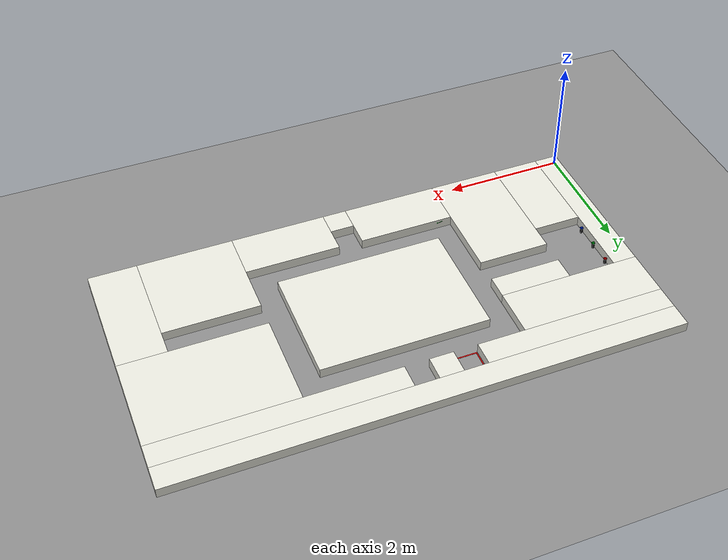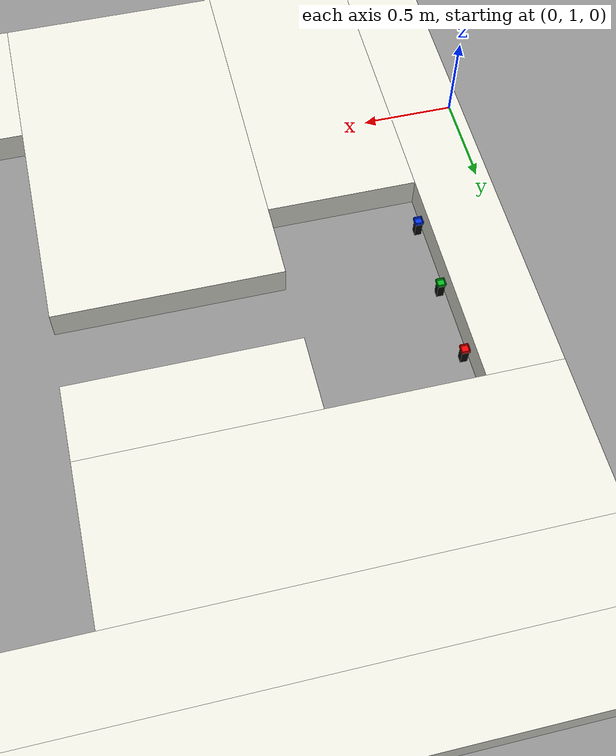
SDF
<sdf version="1.9">
 <world name="ros2_world">
  <model name="ground_plane">
   <static>true</static>
   <link name="link">
    <collision name="collision">
     <geometry><plane><normal>0 0 1</normal><size>30 30</size></plane></geometry>
    </collision>
    <visual name="visual">
     <geometry><plane><normal>0 0 1</normal><size>30 30</size></plane></geometry>
     <material><ambient>0.55 0.55 0.55 1</ambient><diffuse>0.55 0.55 0.55 1</diffuse></material>
    </visual>
   </link>
  </model>
  <model name="paredes">
   <static>true</static>
   <link name="bloque_0">
    <pose>4.2 4.2 0.085 0 0 0</pose>
    <collision name="colision"><geometry><box><size>8.4 0.4 0.17</size></box></geometry></collision>
    <visual name="visual">
     <geometry><box><size>8.4 0.4 0.17</size></box></geometry>
     <material><ambient>0.9 0.9 0.86 1</ambient><diffuse>0.9 0.9 0.86 1</diffuse></material>
    </visual>
   </link>
   <link name="bloque_1">
    <pose>1.6 3.8 0.085 0 0 0</pose>
    <collision name="colision"><geometry><box><size>3.2 0.4 0.17</size></box></geometry></collision>
    <visual name="visual">
     <geometry><box><size>3.2 0.4 0.17</size></box></geometry>
     <material><ambient>0.9 0.9 0.86 1</ambient><diffuse>0.9 0.9 0.86 1</diffuse></material>
    </visual>
   </link>
   <link name="bloque_2">
    <pose>3.8 3.8 0.085 0 0 0</pose>
    <collision name="colision"><geometry><box><size>0.4 0.4 0.17</size></box></geometry></collision>
    <visual name="visual">
     <geometry><box><size>0.4 0.4 0.17</size></box></geometry>
     <material><ambient>0.9 0.9 0.86 1</ambient><diffuse>0.9 0.9 0.86 1</diffuse></material>
    </visual>
   </link>
   <link name="bloque_3">
    <pose>6.4 3.8 0.085 0 0 0</pose>
    <collision name="colision"><geometry><box><size>4 0.4 0.17</size></box></geometry></collision>
    <visual name="visual">
     <geometry><box><size>4 0.4 0.17</size></box></geometry>
     <material><ambient>0.9 0.9 0.86 1</ambient><diffuse>0.9 0.9 0.86 1</diffuse></material>
    </visual>
   </link>
   <link name="bloque_4">
    <pose>1.2 3.2 0.085 0 0 0</pose>
    <collision name="colision"><geometry><box><size>2.4 0.8 0.17</size></box></geometry></collision>
    <visual name="visual">
     <geometry><box><size>2.4 0.8 0.17</size></box></geometry>
     <material><ambient>0.9 0.9 0.86 1</ambient><diffuse>0.9 0.9 0.86 1</diffuse></material>
    </visual>
   </link>
   <link name="bloque_5">
    <pose>7.2 2.8 0.085 0 0 0</pose>
    <collision name="colision"><geometry><box><size>2.4 1.6 0.17</size></box></geometry></collision>
    <visual name="visual">
     <geometry><box><size>2.4 1.6 0.17</size></box></geometry>
     <material><ambient>0.9 0.9 0.86 1</ambient><diffuse>0.9 0.9 0.86 1</diffuse></material>
    </visual>
   </link>
   <link name="bloque_6">
    <pose>4.2 2.2 0.085 0 0 0</pose>
    <collision name="colision"><geometry><box><size>2.8 2 0.17</size></box></geometry></collision>
    <visual name="visual">
     <geometry><box><size>2.8 2 0.17</size></box></geometry>
     <material><ambient>0.9 0.9 0.86 1</ambient><diffuse>0.9 0.9 0.86 1</diffuse></material>
    </visual>
   </link>
   <link name="bloque_7">
    <pose>0.2 1.4 0.085 0 0 0</pose>
    <collision name="colision"><geometry><box><size>0.4 2.8 0.17</size></box></geometry></collision>
    <visual name="visual">
     <geometry><box><size>0.4 2.8 0.17</size></box></geometry>
     <material><ambient>0.9 0.9 0.86 1</ambient><diffuse>0.9 0.9 0.86 1</diffuse></material>
    </visual>
   </link>
   <link name="bloque_8">
    <pose>1.8 2.6 0.085 0 0 0</pose>
    <collision name="colision"><geometry><box><size>1.2 0.4 0.17</size></box></geometry></collision>
    <visual name="visual">
     <geometry><box><size>1.2 0.4 0.17</size></box></geometry>
     <material><ambient>0.9 0.9 0.86 1</ambient><diffuse>0.9 0.9 0.86 1</diffuse></material>
    </visual>
   </link>
   <link name="bloque_9">
    <pose>1.8 1 0.085 0 0 0</pose>
    <collision name="colision"><geometry><box><size>1.2 2 0.17</size></box></geometry></collision>
    <visual name="visual">
     <geometry><box><size>1.2 2 0.17</size></box></geometry>
     <material><ambient>0.9 0.9 0.86 1</ambient><diffuse>0.9 0.9 0.86 1</diffuse></material>
    </visual>
   </link>
   <link name="bloque_10">
    <pose>8 1 0.085 0 0 0</pose>
    <collision name="colision"><geometry><box><size>0.8 2 0.17</size></box></geometry></collision>
    <visual name="visual">
     <geometry><box><size>0.8 2 0.17</size></box></geometry>
     <material><ambient>0.9 0.9 0.86 1</ambient><diffuse>0.9 0.9 0.86 1</diffuse></material>
    </visual>
   </link>
   <link name="bloque_11">
    <pose>0.8 0.8 0.085 0 0 0</pose>
    <collision name="colision"><geometry><box><size>0.8 1.6 0.17</size></box></geometry></collision>
    <visual name="visual">
     <geometry><box><size>0.8 1.6 0.17</size></box></geometry>
     <material><ambient>0.9 0.9 0.86 1</ambient><diffuse>0.9 0.9 0.86 1</diffuse></material>
    </visual>
   </link>
   <link name="bloque_12">
    <pose>6.8 0.8 0.085 0 0 0</pose>
    <collision name="colision"><geometry><box><size>1.6 1.6 0.17</size></box></geometry></collision>
    <visual name="visual">
     <geometry><box><size>1.6 1.6 0.17</size></box></geometry>
     <material><ambient>0.9 0.9 0.86 1</ambient><diffuse>0.9 0.9 0.86 1</diffuse></material>
    </visual>
   </link>
   <link name="bloque_13">
    <pose>3.2 0.4 0.085 0 0 0</pose>
    <collision name="colision"><geometry><box><size>1.6 0.8 0.17</size></box></geometry></collision>
    <visual name="visual">
     <geometry><box><size>1.6 0.8 0.17</size></box></geometry>
     <material><ambient>0.9 0.9 0.86 1</ambient><diffuse>0.9 0.9 0.86 1</diffuse></material>
    </visual>
   </link>
   <link name="bloque_14">
    <pose>5.2 0.4 0.085 0 0 0</pose>
    <collision name="colision"><geometry><box><size>1.6 0.8 0.17</size></box></geometry></collision>
    <visual name="visual">
     <geometry><box><size>1.6 0.8 0.17</size></box></geometry>
     <material><ambient>0.9 0.9 0.86 1</ambient><diffuse>0.9 0.9 0.86 1</diffuse></material>
    </visual>
   </link>
   <link name="bloque_15">
    <pose>4.2 0.2 0.085 0 0 0</pose>
    <collision name="colision"><geometry><box><size>0.4 0.4 0.17</size></box></geometry></collision>
    <visual name="visual">
     <geometry><box><size>0.4 0.4 0.17</size></box></geometry>
     <material><ambient>0.9 0.9 0.86 1</ambient><diffuse>0.9 0.9 0.86 1</diffuse></material>
    </visual>
   </link>
  </model>
  <model name="zonas_prohibidas">
   <static>true</static>
   <link name="zona_0">
    <visual name="norte">
     <pose>3.4 3.985 0.0005 0 0 0</pose>
     <geometry><box><size>0.39 0.02 0.001</size></box></geometry>
     <material><ambient>0.85 0 0 1</ambient><diffuse>0.85 0 0 1</diffuse></material>
    </visual>
    <visual name="sur">
     <pose>3.4 3.615 0.0005 0 0 0</pose>
     <geometry><box><size>0.39 0.02 0.001</size></box></geometry>
     <material><ambient>0.85 0 0 1</ambient><diffuse>0.85 0 0 1</diffuse></material>
    </visual>
    <visual name="este">
     <pose>3.585 3.8 0.0005 0 0 0</pose>
     <geometry><box><size>0.02 0.35 0.001</size></box></geometry>
     <material><ambient>0.85 0 0 1</ambient><diffuse>0.85 0 0 1</diffuse></material>
    </visual>
    <visual name="oeste">
     <pose>3.215 3.8 0.0005 0 0 0</pose>
     <geometry><box><size>0.02 0.35 0.001</size></box></geometry>
     <material><ambient>0.85 0 0 1</ambient><diffuse>0.85 0 0 1</diffuse></material>
    </visual>
   </link>
  </model>
  <model name="flechas">
   <static>true</static>
   <link name="flecha_0">
    <pose>2.52 3.59875 0.115 0 0 0</pose>
    <visual name="p0">
     <pose>-0.007 0 0 0 0 0</pose>
     <geometry><box><size>0.085 0.0015 0.01</size></box></geometry>
     <material><ambient>0 0.2 1 1</ambient><diffuse>0 0.2 1 1</diffuse></material>
    </visual>
    <visual name="p1">
     <pose>0.03578 0 0 0 0 0</pose>
     <geometry><box><size>0.00056 0.0015 0.029</size></box></geometry>
     <material><ambient>0 0.2 1 1</ambient><diffuse>0 0.2 1 1</diffuse></material>
    </visual>
    <visual name="p2">
     <pose>0.03634 0 0 0 0 0</pose>
     <geometry><box><size>0.00056 0.0015 0.02784</size></box></geometry>
     <material><ambient>0 0.2 1 1</ambient><diffuse>0 0.2 1 1</diffuse></material>
    </visual>
    <visual name="p3">
     <pose>0.0369 0 0 0 0 0</pose>
     <geometry><box><size>0.00056 0.0015 0.02668</size></box></geometry>
     <material><ambient>0 0.2 1 1</ambient><diffuse>0 0.2 1 1</diffuse></material>
    </visual>
    <visual name="p4">
     <pose>0.03746 0 0 0 0 0</pose>
     <geometry><box><size>0.00056 0.0015 0.02552</size></box></geometry>
     <material><ambient>0 0.2 1 1</ambient><diffuse>0 0.2 1 1</diffuse></material>
    </visual>
    <visual name="p5">
     <pose>0.03802 0 0 0 0 0</pose>
     <geometry><box><size>0.00056 0.0015 0.02436</size></box></geometry>
     <material><ambient>0 0.2 1 1</ambient><diffuse>0 0.2 1 1</diffuse></material>
    </visual>
    <visual name="p6">
     <pose>0.03858 0 0 0 0 0</pose>
     <geometry><box><size>0.00056 0.0015 0.0232</size></box></geometry>
     <material><ambient>0 0.2 1 1</ambient><diffuse>0 0.2 1 1</diffuse></material>
    </visual>
    <visual name="p7">
     <pose>0.03914 0 0 0 0 0</pose>
     <geometry><box><size>0.00056 0.0015 0.02204</size></box></geometry>
     <material><ambient>0 0.2 1 1</ambient><diffuse>0 0.2 1 1</diffuse></material>
    </visual>
    <visual name="p8">
     <pose>0.0397 0 0 0 0 0</pose>
     <geometry><box><size>0.00056 0.0015 0.02088</size></box></geometry>
     <material><ambient>0 0.2 1 1</ambient><diffuse>0 0.2 1 1</diffuse></material>
    </visual>
    <visual name="p9">
     <pose>0.04026 0 0 0 0 0</pose>
     <geometry><box><size>0.00056 0.0015 0.01972</size></box></geometry>
     <material><ambient>0 0.2 1 1</ambient><diffuse>0 0.2 1 1</diffuse></material>
    </visual>
    <visual name="p10">
     <pose>0.04082 0 0 0 0 0</pose>
     <geometry><box><size>0.00056 0.0015 0.01856</size></box></geometry>
     <material><ambient>0 0.2 1 1</ambient><diffuse>0 0.2 1 1</diffuse></material>
    </visual>
    <visual name="p11">
     <pose>0.04138 0 0 0 0 0</pose>
     <geometry><box><size>0.00056 0.0015 0.0174</size></box></geometry>
     <material><ambient>0 0.2 1 1</ambient><diffuse>0 0.2 1 1</diffuse></material>
    </visual>
    <visual name="p12">
     <pose>0.04194 0 0 0 0 0</pose>
     <geometry><box><size>0.00056 0.0015 0.01624</size></box></geometry>
     <material><ambient>0 0.2 1 1</ambient><diffuse>0 0.2 1 1</diffuse></material>
    </visual>
    <visual name="p13">
     <pose>0.0425 0 0 0 0 0</pose>
     <geometry><box><size>0.00056 0.0015 0.01508</size></box></geometry>
     <material><ambient>0 0.2 1 1</ambient><diffuse>0 0.2 1 1</diffuse></material>
    </visual>
    <visual name="p14">
     <pose>0.04306 0 0 0 0 0</pose>
     <geometry><box><size>0.00056 0.0015 0.01392</size></box></geometry>
     <material><ambient>0 0.2 1 1</ambient><diffuse>0 0.2 1 1</diffuse></material>
    </visual>
    <visual name="p15">
     <pose>0.04362 0 0 0 0 0</pose>
     <geometry><box><size>0.00056 0.0015 0.01276</size></box></geometry>
     <material><ambient>0 0.2 1 1</ambient><diffuse>0 0.2 1 1</diffuse></material>
    </visual>
    <visual name="p16">
     <pose>0.04418 0 0 0 0 0</pose>
     <geometry><box><size>0.00056 0.0015 0.0116</size></box></geometry>
     <material><ambient>0 0.2 1 1</ambient><diffuse>0 0.2 1 1</diffuse></material>
    </visual>
    <visual name="p17">
     <pose>0.04474 0 0 0 0 0</pose>
     <geometry><box><size>0.00056 0.0015 0.01044</size></box></geometry>
     <material><ambient>0 0.2 1 1</ambient><diffuse>0 0.2 1 1</diffuse></material>
    </visual>
    <visual name="p18">
     <pose>0.0453 0 0 0 0 0</pose>
     <geometry><box><size>0.00056 0.0015 0.00928</size></box></geometry>
     <material><ambient>0 0.2 1 1</ambient><diffuse>0 0.2 1 1</diffuse></material>
    </visual>
    <visual name="p19">
     <pose>0.04586 0 0 0 0 0</pose>
     <geometry><box><size>0.00056 0.0015 0.00812</size></box></geometry>
     <material><ambient>0 0.2 1 1</ambient><diffuse>0 0.2 1 1</diffuse></material>
    </visual>
    <visual name="p20">
     <pose>0.04642 0 0 0 0 0</pose>
     <geometry><box><size>0.00056 0.0015 0.00696</size></box></geometry>
     <material><ambient>0 0.2 1 1</ambient><diffuse>0 0.2 1 1</diffuse></material>
    </visual>
    <visual name="p21">
     <pose>0.04698 0 0 0 0 0</pose>
     <geometry><box><size>0.00056 0.0015 0.0058</size></box></geometry>
     <material><ambient>0 0.2 1 1</ambient><diffuse>0 0.2 1 1</diffuse></material>
    </visual>
    <visual name="p22">
     <pose>0.04754 0 0 0 0 0</pose>
     <geometry><box><size>0.00056 0.0015 0.00464</size></box></geometry>
     <material><ambient>0 0.2 1 1</ambient><diffuse>0 0.2 1 1</diffuse></material>
    </visual>
    <visual name="p23">
     <pose>0.0481 0 0 0 0 0</pose>
     <geometry><box><size>0.00056 0.0015 0.00348</size></box></geometry>
     <material><ambient>0 0.2 1 1</ambient><diffuse>0 0.2 1 1</diffuse></material>
    </visual>
    <visual name="p24">
     <pose>0.04866 0 0 0 0 0</pose>
     <geometry><box><size>0.00056 0.0015 0.00232</size></box></geometry>
     <material><ambient>0 0.2 1 1</ambient><diffuse>0 0.2 1 1</diffuse></material>
    </visual>
    <visual name="p25">
     <pose>0.04922 0 0 0 0 0</pose>
     <geometry><box><size>0.00056 0.0015 0.00116</size></box></geometry>
     <material><ambient>0 0.2 1 1</ambient><diffuse>0 0.2 1 1</diffuse></material>
    </visual>
   </link>
   <link name="flecha_4">
    <pose>1.32 2.39875 0.115 0 0 0</pose>
    <visual name="p0">
     <pose>-0.007 0 0 0 0 0</pose>
     <geometry><box><size>0.085 0.0015 0.01</size></box></geometry>
     <material><ambient>0 0.2 1 1</ambient><diffuse>0 0.2 1 1</diffuse></material>
    </visual>
    <visual name="p1">
     <pose>0.03578 0 0 0 0 0</pose>
     <geometry><box><size>0.00056 0.0015 0.029</size></box></geometry>
     <material><ambient>0 0.2 1 1</ambient><diffuse>0 0.2 1 1</diffuse></material>
    </visual>
    <visual name="p2">
     <pose>0.03634 0 0 0 0 0</pose>
     <geometry><box><size>0.00056 0.0015 0.02784</size></box></geometry>
     <material><ambient>0 0.2 1 1</ambient><diffuse>0 0.2 1 1</diffuse></material>
    </visual>
    <visual name="p3">
     <pose>0.0369 0 0 0 0 0</pose>
     <geometry><box><size>0.00056 0.0015 0.02668</size></box></geometry>
     <material><ambient>0 0.2 1 1</ambient><diffuse>0 0.2 1 1</diffuse></material>
    </visual>
    <visual name="p4">
     <pose>0.03746 0 0 0 0 0</pose>
     <geometry><box><size>0.00056 0.0015 0.02552</size></box></geometry>
     <material><ambient>0 0.2 1 1</ambient><diffuse>0 0.2 1 1</diffuse></material>
    </visual>
    <visual name="p5">
     <pose>0.03802 0 0 0 0 0</pose>
     <geometry><box><size>0.00056 0.0015 0.02436</size></box></geometry>
     <material><ambient>0 0.2 1 1</ambient><diffuse>0 0.2 1 1</diffuse></material>
    </visual>
    <visual name="p6">
     <pose>0.03858 0 0 0 0 0</pose>
     <geometry><box><size>0.00056 0.0015 0.0232</size></box></geometry>
     <material><ambient>0 0.2 1 1</ambient><diffuse>0 0.2 1 1</diffuse></material>
    </visual>
    <visual name="p7">
     <pose>0.03914 0 0 0 0 0</pose>
     <geometry><box><size>0.00056 0.0015 0.02204</size></box></geometry>
     <material><ambient>0 0.2 1 1</ambient><diffuse>0 0.2 1 1</diffuse></material>
    </visual>
    <visual name="p8">
     <pose>0.0397 0 0 0 0 0</pose>
     <geometry><box><size>0.00056 0.0015 0.02088</size></box></geometry>
     <material><ambient>0 0.2 1 1</ambient><diffuse>0 0.2 1 1</diffuse></material>
    </visual>
    <visual name="p9">
     <pose>0.04026 0 0 0 0 0</pose>
     <geometry><box><size>0.00056 0.0015 0.01972</size></box></geometry>
     <material><ambient>0 0.2 1 1</ambient><diffuse>0 0.2 1 1</diffuse></material>
    </visual>
    <visual name="p10">
     <pose>0.04082 0 0 0 0 0</pose>
     <geometry><box><size>0.00056 0.0015 0.01856</size></box></geometry>
     <material><ambient>0 0.2 1 1</ambient><diffuse>0 0.2 1 1</diffuse></material>
    </visual>
    <visual name="p11">
     <pose>0.04138 0 0 0 0 0</pose>
     <geometry><box><size>0.00056 0.0015 0.0174</size></box></geometry>
     <material><ambient>0 0.2 1 1</ambient><diffuse>0 0.2 1 1</diffuse></material>
    </visual>
    <visual name="p12">
     <pose>0.04194 0 0 0 0 0</pose>
     <geometry><box><size>0.00056 0.0015 0.01624</size></box></geometry>
     <material><ambient>0 0.2 1 1</ambient><diffuse>0 0.2 1 1</diffuse></material>
    </visual>
    <visual name="p13">
     <pose>0.0425 0 0 0 0 0</pose>
     <geometry><box><size>0.00056 0.0015 0.01508</size></box></geometry>
     <material><ambient>0 0.2 1 1</ambient><diffuse>0 0.2 1 1</diffuse></material>
    </visual>
    <visual name="p14">
     <pose>0.04306 0 0 0 0 0</pose>
     <geometry><box><size>0.00056 0.0015 0.01392</size></box></geometry>
     <material><ambient>0 0.2 1 1</ambient><diffuse>0 0.2 1 1</diffuse></material>
    </visual>
    <visual name="p15">
     <pose>0.04362 0 0 0 0 0</pose>
     <geometry><box><size>0.00056 0.0015 0.01276</size></box></geometry>
     <material><ambient>0 0.2 1 1</ambient><diffuse>0 0.2 1 1</diffuse></material>
    </visual>
    <visual name="p16">
     <pose>0.04418 0 0 0 0 0</pose>
     <geometry><box><size>0.00056 0.0015 0.0116</size></box></geometry>
     <material><ambient>0 0.2 1 1</ambient><diffuse>0 0.2 1 1</diffuse></material>
    </visual>
    <visual name="p17">
     <pose>0.04474 0 0 0 0 0</pose>
     <geometry><box><size>0.00056 0.0015 0.01044</size></box></geometry>
     <material><ambient>0 0.2 1 1</ambient><diffuse>0 0.2 1 1</diffuse></material>
    </visual>
    <visual name="p18">
     <pose>0.0453 0 0 0 0 0</pose>
     <geometry><box><size>0.00056 0.0015 0.00928</size></box></geometry>
     <material><ambient>0 0.2 1 1</ambient><diffuse>0 0.2 1 1</diffuse></material>
    </visual>
    <visual name="p19">
     <pose>0.04586 0 0 0 0 0</pose>
     <geometry><box><size>0.00056 0.0015 0.00812</size></box></geometry>
     <material><ambient>0 0.2 1 1</ambient><diffuse>0 0.2 1 1</diffuse></material>
    </visual>
    <visual name="p20">
     <pose>0.04642 0 0 0 0 0</pose>
     <geometry><box><size>0.00056 0.0015 0.00696</size></box></geometry>
     <material><ambient>0 0.2 1 1</ambient><diffuse>0 0.2 1 1</diffuse></material>
    </visual>
    <visual name="p21">
     <pose>0.04698 0 0 0 0 0</pose>
     <geometry><box><size>0.00056 0.0015 0.0058</size></box></geometry>
     <material><ambient>0 0.2 1 1</ambient><diffuse>0 0.2 1 1</diffuse></material>
    </visual>
    <visual name="p22">
     <pose>0.04754 0 0 0 0 0</pose>
     <geometry><box><size>0.00056 0.0015 0.00464</size></box></geometry>
     <material><ambient>0 0.2 1 1</ambient><diffuse>0 0.2 1 1</diffuse></material>
    </visual>
    <visual name="p23">
     <pose>0.0481 0 0 0 0 0</pose>
     <geometry><box><size>0.00056 0.0015 0.00348</size></box></geometry>
     <material><ambient>0 0.2 1 1</ambient><diffuse>0 0.2 1 1</diffuse></material>
    </visual>
    <visual name="p24">
     <pose>0.04866 0 0 0 0 0</pose>
     <geometry><box><size>0.00056 0.0015 0.00232</size></box></geometry>
     <material><ambient>0 0.2 1 1</ambient><diffuse>0 0.2 1 1</diffuse></material>
    </visual>
    <visual name="p25">
     <pose>0.04922 0 0 0 0 0</pose>
     <geometry><box><size>0.00056 0.0015 0.00116</size></box></geometry>
     <material><ambient>0 0.2 1 1</ambient><diffuse>0 0.2 1 1</diffuse></material>
    </visual>
   </link>
   <link name="flecha_5">
    <pose>1.48 2.39875 0.125 0 0 0</pose>
    <visual name="p0">
     <pose>-0.007 0 0 0 0 0</pose>
     <geometry><box><size>0.085 0.0015 0.01</size></box></geometry>
     <material><ambient>0 0.7 0.1 1</ambient><diffuse>0 0.7 0.1 1</diffuse></material>
    </visual>
    <visual name="p1">
     <pose>0.03578 0 0 0 0 0</pose>
     <geometry><box><size>0.00056 0.0015 0.029</size></box></geometry>
     <material><ambient>0 0.7 0.1 1</ambient><diffuse>0 0.7 0.1 1</diffuse></material>
    </visual>
    <visual name="p2">
     <pose>0.03634 0 0 0 0 0</pose>
     <geometry><box><size>0.00056 0.0015 0.02784</size></box></geometry>
     <material><ambient>0 0.7 0.1 1</ambient><diffuse>0 0.7 0.1 1</diffuse></material>
    </visual>
    <visual name="p3">
     <pose>0.0369 0 0 0 0 0</pose>
     <geometry><box><size>0.00056 0.0015 0.02668</size></box></geometry>
     <material><ambient>0 0.7 0.1 1</ambient><diffuse>0 0.7 0.1 1</diffuse></material>
    </visual>
    <visual name="p4">
     <pose>0.03746 0 0 0 0 0</pose>
     <geometry><box><size>0.00056 0.0015 0.02552</size></box></geometry>
     <material><ambient>0 0.7 0.1 1</ambient><diffuse>0 0.7 0.1 1</diffuse></material>
    </visual>
    <visual name="p5">
     <pose>0.03802 0 0 0 0 0</pose>
     <geometry><box><size>0.00056 0.0015 0.02436</size></box></geometry>
     <material><ambient>0 0.7 0.1 1</ambient><diffuse>0 0.7 0.1 1</diffuse></material>
    </visual>
    <visual name="p6">
     <pose>0.03858 0 0 0 0 0</pose>
     <geometry><box><size>0.00056 0.0015 0.0232</size></box></geometry>
     <material><ambient>0 0.7 0.1 1</ambient><diffuse>0 0.7 0.1 1</diffuse></material>
    </visual>
    <visual name="p7">
     <pose>0.03914 0 0 0 0 0</pose>
     <geometry><box><size>0.00056 0.0015 0.02204</size></box></geometry>
     <material><ambient>0 0.7 0.1 1</ambient><diffuse>0 0.7 0.1 1</diffuse></material>
    </visual>
    <visual name="p8">
     <pose>0.0397 0 0 0 0 0</pose>
     <geometry><box><size>0.00056 0.0015 0.02088</size></box></geometry>
     <material><ambient>0 0.7 0.1 1</ambient><diffuse>0 0.7 0.1 1</diffuse></material>
    </visual>
    <visual name="p9">
     <pose>0.04026 0 0 0 0 0</pose>
     <geometry><box><size>0.00056 0.0015 0.01972</size></box></geometry>
     <material><ambient>0 0.7 0.1 1</ambient><diffuse>0 0.7 0.1 1</diffuse></material>
    </visual>
    <visual name="p10">
     <pose>0.04082 0 0 0 0 0</pose>
     <geometry><box><size>0.00056 0.0015 0.01856</size></box></geometry>
     <material><ambient>0 0.7 0.1 1</ambient><diffuse>0 0.7 0.1 1</diffuse></material>
    </visual>
    <visual name="p11">
     <pose>0.04138 0 0 0 0 0</pose>
     <geometry><box><size>0.00056 0.0015 0.0174</size></box></geometry>
     <material><ambient>0 0.7 0.1 1</ambient><diffuse>0 0.7 0.1 1</diffuse></material>
    </visual>
    <visual name="p12">
     <pose>0.04194 0 0 0 0 0</pose>
     <geometry><box><size>0.00056 0.0015 0.01624</size></box></geometry>
     <material><ambient>0 0.7 0.1 1</ambient><diffuse>0 0.7 0.1 1</diffuse></material>
    </visual>
    <visual name="p13">
     <pose>0.0425 0 0 0 0 0</pose>
     <geometry><box><size>0.00056 0.0015 0.01508</size></box></geometry>
     <material><ambient>0 0.7 0.1 1</ambient><diffuse>0 0.7 0.1 1</diffuse></material>
    </visual>
    <visual name="p14">
     <pose>0.04306 0 0 0 0 0</pose>
     <geometry><box><size>0.00056 0.0015 0.01392</size></box></geometry>
     <material><ambient>0 0.7 0.1 1</ambient><diffuse>0 0.7 0.1 1</diffuse></material>
    </visual>
    <visual name="p15">
     <pose>0.04362 0 0 0 0 0</pose>
     <geometry><box><size>0.00056 0.0015 0.01276</size></box></geometry>
     <material><ambient>0 0.7 0.1 1</ambient><diffuse>0 0.7 0.1 1</diffuse></material>
    </visual>
    <visual name="p16">
     <pose>0.04418 0 0 0 0 0</pose>
     <geometry><box><size>0.00056 0.0015 0.0116</size></box></geometry>
     <material><ambient>0 0.7 0.1 1</ambient><diffuse>0 0.7 0.1 1</diffuse></material>
    </visual>
    <visual name="p17">
     <pose>0.04474 0 0 0 0 0</pose>
     <geometry><box><size>0.00056 0.0015 0.01044</size></box></geometry>
     <material><ambient>0 0.7 0.1 1</ambient><diffuse>0 0.7 0.1 1</diffuse></material>
    </visual>
    <visual name="p18">
     <pose>0.0453 0 0 0 0 0</pose>
     <geometry><box><size>0.00056 0.0015 0.00928</size></box></geometry>
     <material><ambient>0 0.7 0.1 1</ambient><diffuse>0 0.7 0.1 1</diffuse></material>
    </visual>
    <visual name="p19">
     <pose>0.04586 0 0 0 0 0</pose>
     <geometry><box><size>0.00056 0.0015 0.00812</size></box></geometry>
     <material><ambient>0 0.7 0.1 1</ambient><diffuse>0 0.7 0.1 1</diffuse></material>
    </visual>
    <visual name="p20">
     <pose>0.04642 0 0 0 0 0</pose>
     <geometry><box><size>0.00056 0.0015 0.00696</size></box></geometry>
     <material><ambient>0 0.7 0.1 1</ambient><diffuse>0 0.7 0.1 1</diffuse></material>
    </visual>
    <visual name="p21">
     <pose>0.04698 0 0 0 0 0</pose>
     <geometry><box><size>0.00056 0.0015 0.0058</size></box></geometry>
     <material><ambient>0 0.7 0.1 1</ambient><diffuse>0 0.7 0.1 1</diffuse></material>
    </visual>
    <visual name="p22">
     <pose>0.04754 0 0 0 0 0</pose>
     <geometry><box><size>0.00056 0.0015 0.00464</size></box></geometry>
     <material><ambient>0 0.7 0.1 1</ambient><diffuse>0 0.7 0.1 1</diffuse></material>
    </visual>
    <visual name="p23">
     <pose>0.0481 0 0 0 0 0</pose>
     <geometry><box><size>0.00056 0.0015 0.00348</size></box></geometry>
     <material><ambient>0 0.7 0.1 1</ambient><diffuse>0 0.7 0.1 1</diffuse></material>
    </visual>
    <visual name="p24">
     <pose>0.04866 0 0 0 0 0</pose>
     <geometry><box><size>0.00056 0.0015 0.00232</size></box></geometry>
     <material><ambient>0 0.7 0.1 1</ambient><diffuse>0 0.7 0.1 1</diffuse></material>
    </visual>
    <visual name="p25">
     <pose>0.04922 0 0 0 0 0</pose>
     <geometry><box><size>0.00056 0.0015 0.00116</size></box></geometry>
     <material><ambient>0 0.7 0.1 1</ambient><diffuse>0 0.7 0.1 1</diffuse></material>
    </visual>
   </link>
   <link name="flecha_6">
    <pose>1.48 2.39875 0.045 0 0 0</pose>
    <visual name="p0">
     <pose>-0.007 0 0 0 0 0</pose>
     <geometry><box><size>0.085 0.0015 0.01</size></box></geometry>
     <material><ambient>1 0 0 1</ambient><diffuse>1 0 0 1</diffuse></material>
    </visual>
    <visual name="p1">
     <pose>0.03578 0 0 0 0 0</pose>
     <geometry><box><size>0.00056 0.0015 0.029</size></box></geometry>
     <material><ambient>1 0 0 1</ambient><diffuse>1 0 0 1</diffuse></material>
    </visual>
    <visual name="p2">
     <pose>0.03634 0 0 0 0 0</pose>
     <geometry><box><size>0.00056 0.0015 0.02784</size></box></geometry>
     <material><ambient>1 0 0 1</ambient><diffuse>1 0 0 1</diffuse></material>
    </visual>
    <visual name="p3">
     <pose>0.0369 0 0 0 0 0</pose>
     <geometry><box><size>0.00056 0.0015 0.02668</size></box></geometry>
     <material><ambient>1 0 0 1</ambient><diffuse>1 0 0 1</diffuse></material>
    </visual>
    <visual name="p4">
     <pose>0.03746 0 0 0 0 0</pose>
     <geometry><box><size>0.00056 0.0015 0.02552</size></box></geometry>
     <material><ambient>1 0 0 1</ambient><diffuse>1 0 0 1</diffuse></material>
    </visual>
    <visual name="p5">
     <pose>0.03802 0 0 0 0 0</pose>
     <geometry><box><size>0.00056 0.0015 0.02436</size></box></geometry>
     <material><ambient>1 0 0 1</ambient><diffuse>1 0 0 1</diffuse></material>
    </visual>
    <visual name="p6">
     <pose>0.03858 0 0 0 0 0</pose>
     <geometry><box><size>0.00056 0.0015 0.0232</size></box></geometry>
     <material><ambient>1 0 0 1</ambient><diffuse>1 0 0 1</diffuse></material>
    </visual>
    <visual name="p7">
     <pose>0.03914 0 0 0 0 0</pose>
     <geometry><box><size>0.00056 0.0015 0.02204</size></box></geometry>
     <material><ambient>1 0 0 1</ambient><diffuse>1 0 0 1</diffuse></material>
    </visual>
    <visual name="p8">
     <pose>0.0397 0 0 0 0 0</pose>
     <geometry><box><size>0.00056 0.0015 0.02088</size></box></geometry>
     <material><ambient>1 0 0 1</ambient><diffuse>1 0 0 1</diffuse></material>
    </visual>
    <visual name="p9">
     <pose>0.04026 0 0 0 0 0</pose>
     <geometry><box><size>0.00056 0.0015 0.01972</size></box></geometry>
     <material><ambient>1 0 0 1</ambient><diffuse>1 0 0 1</diffuse></material>
    </visual>
    <visual name="p10">
     <pose>0.04082 0 0 0 0 0</pose>
     <geometry><box><size>0.00056 0.0015 0.01856</size></box></geometry>
     <material><ambient>1 0 0 1</ambient><diffuse>1 0 0 1</diffuse></material>
    </visual>
    <visual name="p11">
     <pose>0.04138 0 0 0 0 0</pose>
     <geometry><box><size>0.00056 0.0015 0.0174</size></box></geometry>
     <material><ambient>1 0 0 1</ambient><diffuse>1 0 0 1</diffuse></material>
    </visual>
    <visual name="p12">
     <pose>0.04194 0 0 0 0 0</pose>
     <geometry><box><size>0.00056 0.0015 0.01624</size></box></geometry>
     <material><ambient>1 0 0 1</ambient><diffuse>1 0 0 1</diffuse></material>
    </visual>
    <visual name="p13">
     <pose>0.0425 0 0 0 0 0</pose>
     <geometry><box><size>0.00056 0.0015 0.01508</size></box></geometry>
     <material><ambient>1 0 0 1</ambient><diffuse>1 0 0 1</diffuse></material>
    </visual>
    <visual name="p14">
     <pose>0.04306 0 0 0 0 0</pose>
     <geometry><box><size>0.00056 0.0015 0.01392</size></box></geometry>
     <material><ambient>1 0 0 1</ambient><diffuse>1 0 0 1</diffuse></material>
    </visual>
    <visual name="p15">
     <pose>0.04362 0 0 0 0 0</pose>
     <geometry><box><size>0.00056 0.0015 0.01276</size></box></geometry>
     <material><ambient>1 0 0 1</ambient><diffuse>1 0 0 1</diffuse></material>
    </visual>
    <visual name="p16">
     <pose>0.04418 0 0 0 0 0</pose>
     <geometry><box><size>0.00056 0.0015 0.0116</size></box></geometry>
     <material><ambient>1 0 0 1</ambient><diffuse>1 0 0 1</diffuse></material>
    </visual>
    <visual name="p17">
     <pose>0.04474 0 0 0 0 0</pose>
     <geometry><box><size>0.00056 0.0015 0.01044</size></box></geometry>
     <material><ambient>1 0 0 1</ambient><diffuse>1 0 0 1</diffuse></material>
    </visual>
    <visual name="p18">
     <pose>0.0453 0 0 0 0 0</pose>
     <geometry><box><size>0.00056 0.0015 0.00928</size></box></geometry>
     <material><ambient>1 0 0 1</ambient><diffuse>1 0 0 1</diffuse></material>
    </visual>
    <visual name="p19">
     <pose>0.04586 0 0 0 0 0</pose>
     <geometry><box><size>0.00056 0.0015 0.00812</size></box></geometry>
     <material><ambient>1 0 0 1</ambient><diffuse>1 0 0 1</diffuse></material>
    </visual>
    <visual name="p20">
     <pose>0.04642 0 0 0 0 0</pose>
     <geometry><box><size>0.00056 0.0015 0.00696</size></box></geometry>
     <material><ambient>1 0 0 1</ambient><diffuse>1 0 0 1</diffuse></material>
    </visual>
    <visual name="p21">
     <pose>0.04698 0 0 0 0 0</pose>
     <geometry><box><size>0.00056 0.0015 0.0058</size></box></geometry>
     <material><ambient>1 0 0 1</ambient><diffuse>1 0 0 1</diffuse></material>
    </visual>
    <visual name="p22">
     <pose>0.04754 0 0 0 0 0</pose>
     <geometry><box><size>0.00056 0.0015 0.00464</size></box></geometry>
     <material><ambient>1 0 0 1</ambient><diffuse>1 0 0 1</diffuse></material>
    </visual>
    <visual name="p23">
     <pose>0.0481 0 0 0 0 0</pose>
     <geometry><box><size>0.00056 0.0015 0.00348</size></box></geometry>
     <material><ambient>1 0 0 1</ambient><diffuse>1 0 0 1</diffuse></material>
    </visual>
    <visual name="p24">
     <pose>0.04866 0 0 0 0 0</pose>
     <geometry><box><size>0.00056 0.0015 0.00232</size></box></geometry>
     <material><ambient>1 0 0 1</ambient><diffuse>1 0 0 1</diffuse></material>
    </visual>
    <visual name="p25">
     <pose>0.04922 0 0 0 0 0</pose>
     <geometry><box><size>0.00056 0.0015 0.00116</size></box></geometry>
     <material><ambient>1 0 0 1</ambient><diffuse>1 0 0 1</diffuse></material>
    </visual>
   </link>
   <link name="flecha_10">
    <pose>2.6 0.80125 0.115 0 0.20944 0</pose>
    <visual name="p0">
     <pose>-0.007 0 0 0 0 0</pose>
     <geometry><box><size>0.085 0.0015 0.01</size></box></geometry>
     <material><ambient>0 0.7 0.1 1</ambient><diffuse>0 0.7 0.1 1</diffuse></material>
    </visual>
    <visual name="p1">
     <pose>0.03578 0 0 0 0 0</pose>
     <geometry><box><size>0.00056 0.0015 0.029</size></box></geometry>
     <material><ambient>0 0.7 0.1 1</ambient><diffuse>0 0.7 0.1 1</diffuse></material>
    </visual>
    <visual name="p2">
     <pose>0.03634 0 0 0 0 0</pose>
     <geometry><box><size>0.00056 0.0015 0.02784</size></box></geometry>
     <material><ambient>0 0.7 0.1 1</ambient><diffuse>0 0.7 0.1 1</diffuse></material>
    </visual>
    <visual name="p3">
     <pose>0.0369 0 0 0 0 0</pose>
     <geometry><box><size>0.00056 0.0015 0.02668</size></box></geometry>
     <material><ambient>0 0.7 0.1 1</ambient><diffuse>0 0.7 0.1 1</diffuse></material>
    </visual>
    <visual name="p4">
     <pose>0.03746 0 0 0 0 0</pose>
     <geometry><box><size>0.00056 0.0015 0.02552</size></box></geometry>
     <material><ambient>0 0.7 0.1 1</ambient><diffuse>0 0.7 0.1 1</diffuse></material>
    </visual>
    <visual name="p5">
     <pose>0.03802 0 0 0 0 0</pose>
     <geometry><box><size>0.00056 0.0015 0.02436</size></box></geometry>
     <material><ambient>0 0.7 0.1 1</ambient><diffuse>0 0.7 0.1 1</diffuse></material>
    </visual>
    <visual name="p6">
     <pose>0.03858 0 0 0 0 0</pose>
     <geometry><box><size>0.00056 0.0015 0.0232</size></box></geometry>
     <material><ambient>0 0.7 0.1 1</ambient><diffuse>0 0.7 0.1 1</diffuse></material>
    </visual>
    <visual name="p7">
     <pose>0.03914 0 0 0 0 0</pose>
     <geometry><box><size>0.00056 0.0015 0.02204</size></box></geometry>
     <material><ambient>0 0.7 0.1 1</ambient><diffuse>0 0.7 0.1 1</diffuse></material>
    </visual>
    <visual name="p8">
     <pose>0.0397 0 0 0 0 0</pose>
     <geometry><box><size>0.00056 0.0015 0.02088</size></box></geometry>
     <material><ambient>0 0.7 0.1 1</ambient><diffuse>0 0.7 0.1 1</diffuse></material>
    </visual>
    <visual name="p9">
     <pose>0.04026 0 0 0 0 0</pose>
     <geometry><box><size>0.00056 0.0015 0.01972</size></box></geometry>
     <material><ambient>0 0.7 0.1 1</ambient><diffuse>0 0.7 0.1 1</diffuse></material>
    </visual>
    <visual name="p10">
     <pose>0.04082 0 0 0 0 0</pose>
     <geometry><box><size>0.00056 0.0015 0.01856</size></box></geometry>
     <material><ambient>0 0.7 0.1 1</ambient><diffuse>0 0.7 0.1 1</diffuse></material>
    </visual>
    <visual name="p11">
     <pose>0.04138 0 0 0 0 0</pose>
     <geometry><box><size>0.00056 0.0015 0.0174</size></box></geometry>
     <material><ambient>0 0.7 0.1 1</ambient><diffuse>0 0.7 0.1 1</diffuse></material>
    </visual>
    <visual name="p12">
     <pose>0.04194 0 0 0 0 0</pose>
     <geometry><box><size>0.00056 0.0015 0.01624</size></box></geometry>
     <material><ambient>0 0.7 0.1 1</ambient><diffuse>0 0.7 0.1 1</diffuse></material>
    </visual>
    <visual name="p13">
     <pose>0.0425 0 0 0 0 0</pose>
     <geometry><box><size>0.00056 0.0015 0.01508</size></box></geometry>
     <material><ambient>0 0.7 0.1 1</ambient><diffuse>0 0.7 0.1 1</diffuse></material>
    </visual>
    <visual name="p14">
     <pose>0.04306 0 0 0 0 0</pose>
     <geometry><box><size>0.00056 0.0015 0.01392</size></box></geometry>
     <material><ambient>0 0.7 0.1 1</ambient><diffuse>0 0.7 0.1 1</diffuse></material>
    </visual>
    <visual name="p15">
     <pose>0.04362 0 0 0 0 0</pose>
     <geometry><box><size>0.00056 0.0015 0.01276</size></box></geometry>
     <material><ambient>0 0.7 0.1 1</ambient><diffuse>0 0.7 0.1 1</diffuse></material>
    </visual>
    <visual name="p16">
     <pose>0.04418 0 0 0 0 0</pose>
     <geometry><box><size>0.00056 0.0015 0.0116</size></box></geometry>
     <material><ambient>0 0.7 0.1 1</ambient><diffuse>0 0.7 0.1 1</diffuse></material>
    </visual>
    <visual name="p17">
     <pose>0.04474 0 0 0 0 0</pose>
     <geometry><box><size>0.00056 0.0015 0.01044</size></box></geometry>
     <material><ambient>0 0.7 0.1 1</ambient><diffuse>0 0.7 0.1 1</diffuse></material>
    </visual>
    <visual name="p18">
     <pose>0.0453 0 0 0 0 0</pose>
     <geometry><box><size>0.00056 0.0015 0.00928</size></box></geometry>
     <material><ambient>0 0.7 0.1 1</ambient><diffuse>0 0.7 0.1 1</diffuse></material>
    </visual>
    <visual name="p19">
     <pose>0.04586 0 0 0 0 0</pose>
     <geometry><box><size>0.00056 0.0015 0.00812</size></box></geometry>
     <material><ambient>0 0.7 0.1 1</ambient><diffuse>0 0.7 0.1 1</diffuse></material>
    </visual>
    <visual name="p20">
     <pose>0.04642 0 0 0 0 0</pose>
     <geometry><box><size>0.00056 0.0015 0.00696</size></box></geometry>
     <material><ambient>0 0.7 0.1 1</ambient><diffuse>0 0.7 0.1 1</diffuse></material>
    </visual>
    <visual name="p21">
     <pose>0.04698 0 0 0 0 0</pose>
     <geometry><box><size>0.00056 0.0015 0.0058</size></box></geometry>
     <material><ambient>0 0.7 0.1 1</ambient><diffuse>0 0.7 0.1 1</diffuse></material>
    </visual>
    <visual name="p22">
     <pose>0.04754 0 0 0 0 0</pose>
     <geometry><box><size>0.00056 0.0015 0.00464</size></box></geometry>
     <material><ambient>0 0.7 0.1 1</ambient><diffuse>0 0.7 0.1 1</diffuse></material>
    </visual>
    <visual name="p23">
     <pose>0.0481 0 0 0 0 0</pose>
     <geometry><box><size>0.00056 0.0015 0.00348</size></box></geometry>
     <material><ambient>0 0.7 0.1 1</ambient><diffuse>0 0.7 0.1 1</diffuse></material>
    </visual>
    <visual name="p24">
     <pose>0.04866 0 0 0 0 0</pose>
     <geometry><box><size>0.00056 0.0015 0.00232</size></box></geometry>
     <material><ambient>0 0.7 0.1 1</ambient><diffuse>0 0.7 0.1 1</diffuse></material>
    </visual>
    <visual name="p25">
     <pose>0.04922 0 0 0 0 0</pose>
     <geometry><box><size>0.00056 0.0015 0.00116</size></box></geometry>
     <material><ambient>0 0.7 0.1 1</ambient><diffuse>0 0.7 0.1 1</diffuse></material>
    </visual>
   </link>
  </model>
  <model name="soporte_canasto_rojo">
   <static>true</static>
   <pose>0.432 2.6 0.04425 0 0 0</pose>
   <link name="link">
    <collision name="colision"><geometry><box><size>0.036 0.036 0.0885</size></box></geometry></collision>
    <visual name="visual">
     <geometry><box><size>0.036 0.036 0.0885</size></box></geometry>
     <material><ambient>0.05 0.05 0.05 1</ambient><diffuse>0.05 0.05 0.05 1</diffuse></material>
    </visual>
   </link>
  </model>
  <model name="canasto_rojo">
   <static>true</static>
   <pose>0.432 2.6 0.0885 0 0 0</pose>
   <link name="link">
    <collision name="c_fondo">
     <pose>0 0 0.0005 0 0 0</pose>
     <geometry><box><size>0.044 0.044 0.001</size></box></geometry>
     <surface><friction><ode><mu>1</mu><mu2>1</mu2></ode></friction></surface>
    </collision>
    <visual name="v_fondo">
     <pose>0 0 0.0005 0 0 0</pose>
     <geometry><box><size>0.044 0.044 0.001</size></box></geometry>
     <material><ambient>1 0 0 1</ambient><diffuse>1 0 0 1</diffuse></material>
    </visual>
    <collision name="c_pared_n">
     <pose>0 0.021 0.01 0 0 0</pose>
     <geometry><box><size>0.044 0.002 0.02</size></box></geometry>
     <surface><friction><ode><mu>1</mu><mu2>1</mu2></ode></friction></surface>
    </collision>
    <visual name="v_pared_n">
     <pose>0 0.021 0.01 0 0 0</pose>
     <geometry><box><size>0.044 0.002 0.02</size></box></geometry>
     <material><ambient>1 0 0 1</ambient><diffuse>1 0 0 1</diffuse></material>
    </visual>
    <collision name="c_pared_s">
     <pose>0 -0.021 0.01 0 0 0</pose>
     <geometry><box><size>0.044 0.002 0.02</size></box></geometry>
     <surface><friction><ode><mu>1</mu><mu2>1</mu2></ode></friction></surface>
    </collision>
    <visual name="v_pared_s">
     <pose>0 -0.021 0.01 0 0 0</pose>
     <geometry><box><size>0.044 0.002 0.02</size></box></geometry>
     <material><ambient>1 0 0 1</ambient><diffuse>1 0 0 1</diffuse></material>
    </visual>
    <collision name="c_pared_e">
     <pose>0.021 0 0.01 0 0 0</pose>
     <geometry><box><size>0.002 0.04 0.02</size></box></geometry>
     <surface><friction><ode><mu>1</mu><mu2>1</mu2></ode></friction></surface>
    </collision>
    <visual name="v_pared_e">
     <pose>0.021 0 0.01 0 0 0</pose>
     <geometry><box><size>0.002 0.04 0.02</size></box></geometry>
     <material><ambient>1 0 0 1</ambient><diffuse>1 0 0 1</diffuse></material>
    </visual>
    <collision name="c_pared_o">
     <pose>-0.021 0 0.01 0 0 0</pose>
     <geometry><box><size>0.002 0.04 0.02</size></box></geometry>
     <surface><friction><ode><mu>1</mu><mu2>1</mu2></ode></friction></surface>
    </collision>
    <visual name="v_pared_o">
     <pose>-0.021 0 0.01 0 0 0</pose>
     <geometry><box><size>0.002 0.04 0.02</size></box></geometry>
     <material><ambient>1 0 0 1</ambient><diffuse>1 0 0 1</diffuse></material>
    </visual>
   </link>
  </model>
  <model name="soporte_canasto_verde">
   <static>true</static>
   <pose>0.432 2.2 0.04425 0 0 0</pose>
   <link name="link">
    <collision name="colision"><geometry><box><size>0.036 0.036 0.0885</size></box></geometry></collision>
    <visual name="visual">
     <geometry><box><size>0.036 0.036 0.0885</size></box></geometry>
     <material><ambient>0.05 0.05 0.05 1</ambient><diffuse>0.05 0.05 0.05 1</diffuse></material>
    </visual>
   </link>
  </model>
  <model name="canasto_verde">
   <static>true</static>
   <pose>0.432 2.2 0.0885 0 0 0</pose>
   <link name="link">
    <collision name="c_fondo">
     <pose>0 0 0.0005 0 0 0</pose>
     <geometry><box><size>0.044 0.044 0.001</size></box></geometry>
     <surface><friction><ode><mu>1</mu><mu2>1</mu2></ode></friction></surface>
    </collision>
    <visual name="v_fondo">
     <pose>0 0 0.0005 0 0 0</pose>
     <geometry><box><size>0.044 0.044 0.001</size></box></geometry>
     <material><ambient>0 0.7 0.1 1</ambient><diffuse>0 0.7 0.1 1</diffuse></material>
    </visual>
    <collision name="c_pared_n">
     <pose>0 0.021 0.01 0 0 0</pose>
     <geometry><box><size>0.044 0.002 0.02</size></box></geometry>
     <surface><friction><ode><mu>1</mu><mu2>1</mu2></ode></friction></surface>
    </collision>
    <visual name="v_pared_n">
     <pose>0 0.021 0.01 0 0 0</pose>
     <geometry><box><size>0.044 0.002 0.02</size></box></geometry>
     <material><ambient>0 0.7 0.1 1</ambient><diffuse>0 0.7 0.1 1</diffuse></material>
    </visual>
    <collision name="c_pared_s">
     <pose>0 -0.021 0.01 0 0 0</pose>
     <geometry><box><size>0.044 0.002 0.02</size></box></geometry>
     <surface><friction><ode><mu>1</mu><mu2>1</mu2></ode></friction></surface>
    </collision>
    <visual name="v_pared_s">
     <pose>0 -0.021 0.01 0 0 0</pose>
     <geometry><box><size>0.044 0.002 0.02</size></box></geometry>
     <material><ambient>0 0.7 0.1 1</ambient><diffuse>0 0.7 0.1 1</diffuse></material>
    </visual>
    <collision name="c_pared_e">
     <pose>0.021 0 0.01 0 0 0</pose>
     <geometry><box><size>0.002 0.04 0.02</size></box></geometry>
     <surface><friction><ode><mu>1</mu><mu2>1</mu2></ode></friction></surface>
    </collision>
    <visual name="v_pared_e">
     <pose>0.021 0 0.01 0 0 0</pose>
     <geometry><box><size>0.002 0.04 0.02</size></box></geometry>
     <material><ambient>0 0.7 0.1 1</ambient><diffuse>0 0.7 0.1 1</diffuse></material>
    </visual>
    <collision name="c_pared_o">
     <pose>-0.021 0 0.01 0 0 0</pose>
     <geometry><box><size>0.002 0.04 0.02</size></box></geometry>
     <surface><friction><ode><mu>1</mu><mu2>1</mu2></ode></friction></surface>
    </collision>
    <visual name="v_pared_o">
     <pose>-0.021 0 0.01 0 0 0</pose>
     <geometry><box><size>0.002 0.04 0.02</size></box></geometry>
     <material><ambient>0 0.7 0.1 1</ambient><diffuse>0 0.7 0.1 1</diffuse></material>
    </visual>
   </link>
  </model>
  <model name="soporte_canasto_azul">
   <static>true</static>
   <pose>0.432 1.8 0.04425 0 0 0</pose>
   <link name="link">
    <collision name="colision"><geometry><box><size>0.036 0.036 0.0885</size></box></geometry></collision>
    <visual name="visual">
     <geometry><box><size>0.036 0.036 0.0885</size></box></geometry>
     <material><ambient>0.05 0.05 0.05 1</ambient><diffuse>0.05 0.05 0.05 1</diffuse></material>
    </visual>
   </link>
  </model>
  <model name="canasto_azul">
   <static>true</static>
   <pose>0.432 1.8 0.0885 0 0 0</pose>
   <link name="link">
    <collision name="c_fondo">
     <pose>0 0 0.0005 0 0 0</pose>
     <geometry><box><size>0.044 0.044 0.001</size></box></geometry>
     <surface><friction><ode><mu>1</mu><mu2>1</mu2></ode></friction></surface>
    </collision>
    <visual name="v_fondo">
     <pose>0 0 0.0005 0 0 0</pose>
     <geometry><box><size>0.044 0.044 0.001</size></box></geometry>
     <material><ambient>0 0.2 1 1</ambient><diffuse>0 0.2 1 1</diffuse></material>
    </visual>
    <collision name="c_pared_n">
     <pose>0 0.021 0.01 0 0 0</pose>
     <geometry><box><size>0.044 0.002 0.02</size></box></geometry>
     <surface><friction><ode><mu>1</mu><mu2>1</mu2></ode></friction></surface>
    </collision>
    <visual name="v_pared_n">
     <pose>0 0.021 0.01 0 0 0</pose>
     <geometry><box><size>0.044 0.002 0.02</size></box></geometry>
     <material><ambient>0 0.2 1 1</ambient><diffuse>0 0.2 1 1</diffuse></material>
    </visual>
    <collision name="c_pared_s">
     <pose>0 -0.021 0.01 0 0 0</pose>
     <geometry><box><size>0.044 0.002 0.02</size></box></geometry>
     <surface><friction><ode><mu>1</mu><mu2>1</mu2></ode></friction></surface>
    </collision>
    <visual name="v_pared_s">
     <pose>0 -0.021 0.01 0 0 0</pose>
     <geometry><box><size>0.044 0.002 0.02</size></box></geometry>
     <material><ambient>0 0.2 1 1</ambient><diffuse>0 0.2 1 1</diffuse></material>
    </visual>
    <collision name="c_pared_e">
     <pose>0.021 0 0.01 0 0 0</pose>
     <geometry><box><size>0.002 0.04 0.02</size></box></geometry>
     <surface><friction><ode><mu>1</mu><mu2>1</mu2></ode></friction></surface>
    </collision>
    <visual name="v_pared_e">
     <pose>0.021 0 0.01 0 0 0</pose>
     <geometry><box><size>0.002 0.04 0.02</size></box></geometry>
     <material><ambient>0 0.2 1 1</ambient><diffuse>0 0.2 1 1</diffuse></material>
    </visual>
    <collision name="c_pared_o">
     <pose>-0.021 0 0.01 0 0 0</pose>
     <geometry><box><size>0.002 0.04 0.02</size></box></geometry>
     <surface><friction><ode><mu>1</mu><mu2>1</mu2></ode></friction></surface>
    </collision>
    <visual name="v_pared_o">
     <pose>-0.021 0 0.01 0 0 0</pose>
     <geometry><box><size>0.002 0.04 0.02</size></box></geometry>
     <material><ambient>0 0.2 1 1</ambient><diffuse>0 0.2 1 1</diffuse></material>
    </visual>
   </link>
  </model>
 </world>
</sdf>
